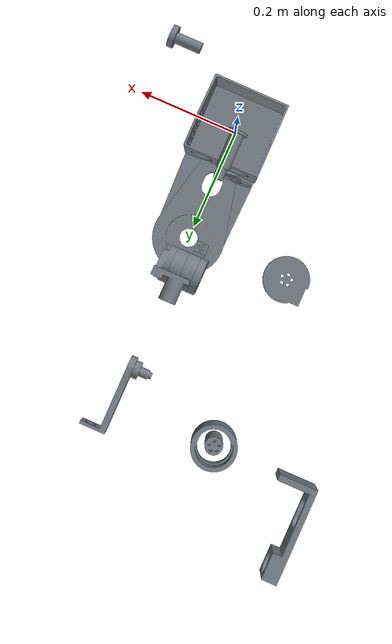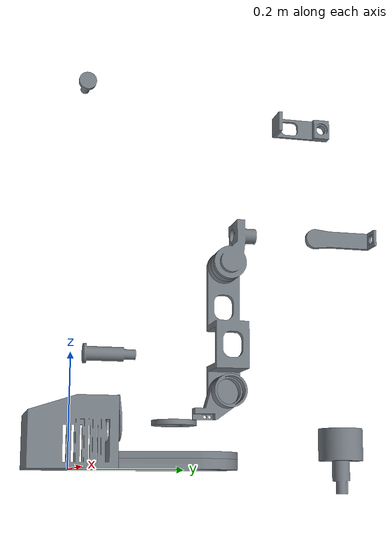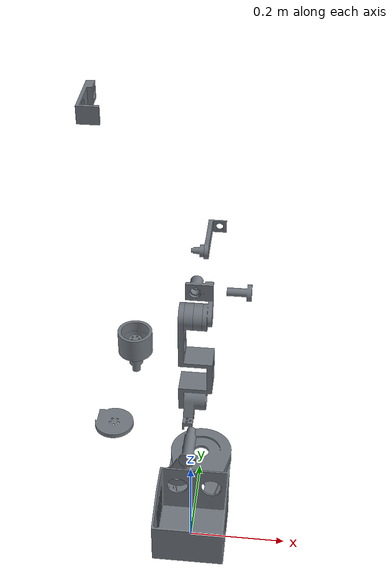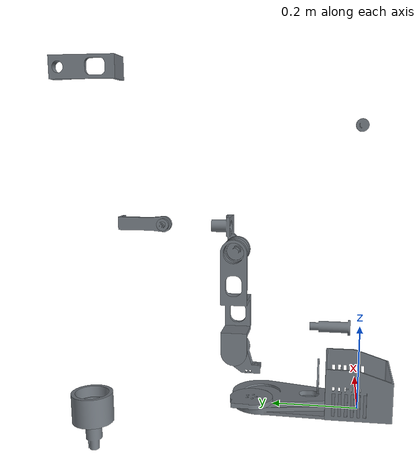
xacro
<?xml version="1.0"?>
<robot xmlns:xacro="http://www.ros.org/wiki/xacro" name="BuddyArm">

  <link name="mcu_base_link">
    <visual>
      <geometry>
        <mesh filename="package://buddyarm_urdf/mesh/buddy_arm-Base.dae"/>
      </geometry>
    </visual>
  </link>

  <link name="j1_base_link">
    <visual>
      <geometry>
        <mesh filename="package://buddyarm_urdf/mesh/buddy_arm-J1_Base.dae"/>
      </geometry>
    </visual>
  </link>

  <link name="j1_turret_housing_link">
    <visual>
      <geometry>
        <mesh filename="package://buddyarm_urdf/mesh/buddy_arm-J1_Turret_Housing.dae"/>
      </geometry>
    </visual>
  </link>

  <link name="j1_platform_link">
    <visual>
      <geometry>
        <mesh filename="package://buddyarm_urdf/mesh/buddy_arm-J1_Platform.dae"/>
      </geometry>
    </visual>
  </link>

  <link name="j1_spindle_link">
    <visual>
      <geometry>
        <mesh filename="package://buddyarm_urdf/mesh/buddy_arm-J1_Spindle.dae"/>
      </geometry>
    </visual>
  </link>

  <link name="j2_arm_link">
    <visual>
      <geometry>
        <mesh filename="package://buddyarm_urdf/mesh/buddy_arm-J2_Arm.dae"/>
      </geometry>
    </visual>
  </link>

  <link name="j2_spindle_link">
    <visual>
      <geometry>
        <mesh filename="package://buddyarm_urdf/mesh/buddy_arm-J2_Spindle.dae"/>
      </geometry>
    </visual>
  </link>

  <link name="j2_tension_ring_link">
    <visual>
      <geometry>
        <mesh filename="package://buddyarm_urdf/mesh/buddy_arm-J2_Tension_Ring.dae"/>
      </geometry>
    </visual>
  </link>

  <link name="j2_turret_housing_link">
    <visual>
      <geometry>
        <mesh filename="package://buddyarm_urdf/mesh/buddy_arm-J2_Turret_Housing.dae"/>
      </geometry>
    </visual>
  </link>

  <link name="j3_bearing_cup_link">
    <visual>
      <geometry>
        <mesh filename="package://buddyarm_urdf/mesh/buddy_arm-J3_Bearing_Cup.dae"/>
      </geometry>
    </visual>
  </link>

  <link name="j3_spindle_link">
    <visual>
      <geometry>
        <mesh filename="package://buddyarm_urdf/mesh/buddy_arm-J3_Spindle.dae"/>
      </geometry>
    </visual>
  </link>

  <link name="j4_turret_housing_link">
    <visual>
      <geometry>
        <mesh filename="package://buddyarm_urdf/mesh/buddy_arm-J4_Turret_Housing.dae"/>
      </geometry>
    </visual>
  </link>

  <link name="j4_spindle_link">
    <visual>
      <geometry>
        <mesh filename="package://buddyarm_urdf/mesh/buddy_arm-J4_Spindle.dae"/>
      </geometry>
    </visual>
  </link>

  <link name="j5_arm_link">
    <visual>
      <geometry>
        <mesh filename="package://buddyarm_urdf/mesh/buddy_arm-J5_Arm.dae"/>
      </geometry>
    </visual>
  </link>

  <link name="j5_spindle_link">
    <visual>
      <geometry>
        <mesh filename="package://buddyarm_urdf/mesh/buddy_arm-J5_Spindle.dae"/>
      </geometry>
    </visual>
  </link>

  <link name="j6_arm_link">
    <visual>
      <geometry>
        <mesh filename="package://buddyarm_urdf/mesh/buddy_arm-J6_Arm.dae"/>
      </geometry>
    </visual>
  </link>

  <joint name="mcu_base_to_j1_base_joint" type="fixed">
    <parent link="mcu_base_link"/>
    <child link="j1_base_link"/>
    <origin xyz="0 0.075 0.018"/>
  </joint>

  <joint name="mcu_base_to_j1_turret_housing_joint" type="fixed">
    <parent link="mcu_base_link"/>
    <child link="j1_turret_housing_link"/>
    <origin xyz="0 0.225 0.025"/>
  </joint>

  <joint name="mcu_base_to_j1_spindle_joint" type="fixed">
    <parent link="mcu_base_link"/>
    <child link="j1_spindle_link"/>
    <origin xyz="0 0.225 -0.007"/>
  </joint>

  <joint name="mcu_base_to_j1_platform_joint" type="fixed">
    <parent link="mcu_base_link"/>
    <child link="j1_platform_link"/>
    <origin xyz="0 0.225 0.090"/>
  </joint>

  <joint name="mcu_base_to_j2_turret_housing_joint" type="fixed">
    <parent link="mcu_base_link"/>
    <child link="j2_turret_housing_link"/>
    <origin rpy="${pi/2} 0 ${-pi/2}" xyz="-0.021 0.245 0.090"/>
  </joint>

  <joint name="mcu_base_to_j2_spindle_joint" type="fixed">
    <parent link="mcu_base_link"/>
    <child link="j2_spindle_link"/>
    <origin rpy="${pi/2} 0 ${pi/2}" xyz="-0.061 0.285 0.140"/>
  </joint>

  <joint name="mcu_base_to_j2_tension_ring_joint" type="fixed">
    <parent link="mcu_base_link"/>
    <child link="j2_tension_ring_link"/>
    <origin rpy="${-pi/2} 0 ${pi/2}" xyz="0.010 0.285 0.140"/>
  </joint>

  <joint name="mcu_base_to_j2_arm_joint" type="fixed">
    <parent link="mcu_base_link"/>
    <child link="j2_arm_link"/>
    <origin rpy="${pi/2} 0 0" xyz="-0.056 0.315 0.110"/>
  </joint>

  <joint name="mcu_base_to_j3_bearing_cup_joint" type="fixed">
    <parent link="mcu_base_link"/>
    <child link="j3_bearing_cup_link"/>
    <origin rpy="0 ${-pi/2} 0" xyz="-0.024 0.285 0.373"/>
  </joint>

  <joint name="mcu_base_to_j3_spindle_joint" type="fixed">
    <parent link="mcu_base_link"/>
    <child link="j3_spindle_link"/>
    <origin rpy="${pi} ${pi/2} 0" xyz="-0.004 0.285 0.373"/>
  </joint>

  <joint name="mcu_base_to_j4_turret_housing_joint" type="fixed">
    <parent link="mcu_base_link"/>
    <child link="j4_turret_housing_link"/>
    <origin rpy="0 ${pi/2} 0" xyz="-0.004 0.285 0.373"/>
  </joint>

  <joint name="mcu_base_to_j4_spindle_joint" type="fixed">
    <parent link="mcu_base_link"/>
    <child link="j4_spindle_link"/>
    <origin rpy="${pi/2} ${pi/2} 0" xyz="-0.023 0.347 0.430"/>
  </joint>

  <joint name="mcu_base_to_j5_arm_joint" type="fixed">
    <parent link="mcu_base_link"/>
    <child link="j5_arm_link"/>
    <origin rpy="0 0 0" xyz="-0.040 0.347 0.409"/>
  </joint>

  <joint name="mcu_base_to_j5_spindle_joint" type="fixed">
    <parent link="mcu_base_link"/>
    <child link="j5_spindle_link"/>
    <origin rpy="${pi/2} 0 ${pi/2}" xyz="-0.043 0.454 0.430"/>
  </joint>

  <joint name="mcu_base_to_j6_arm_joint" type="fixed">
    <parent link="mcu_base_link"/>
    <child link="j6_arm_link"/>
    <origin rpy="${pi/2} 0 ${pi/2}" xyz="-0.018 0.454 0.430"/>
  </joint>

</robot>
